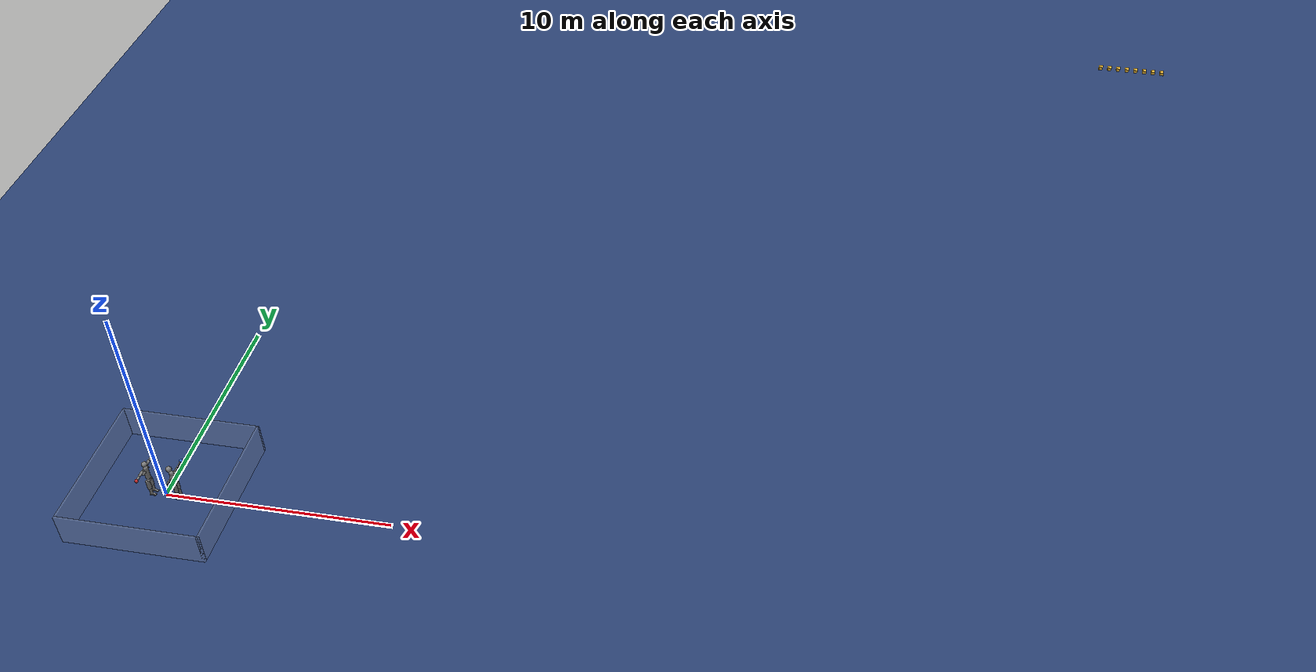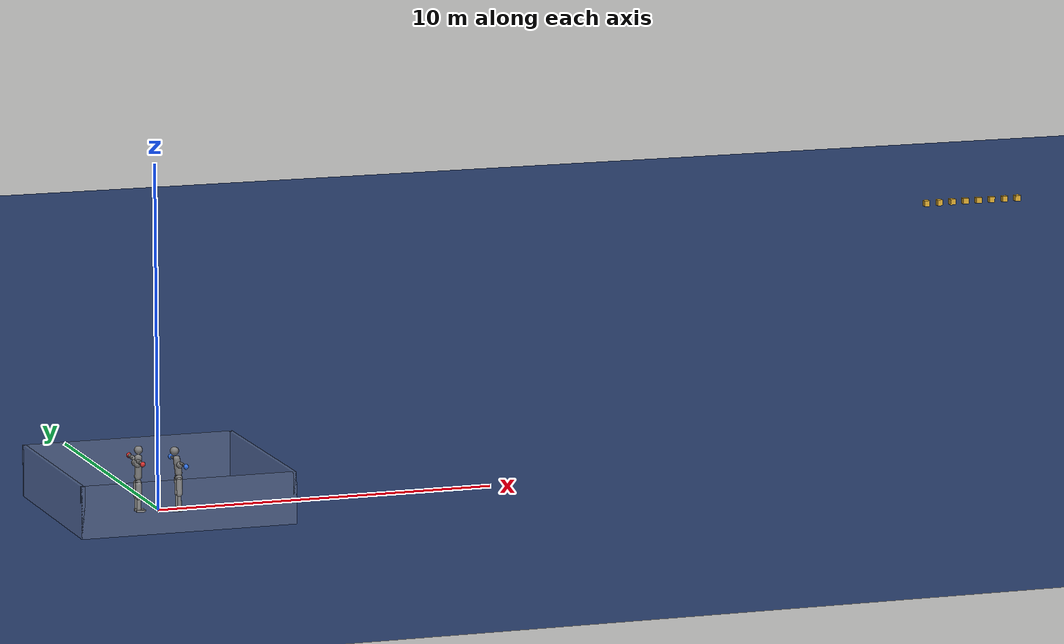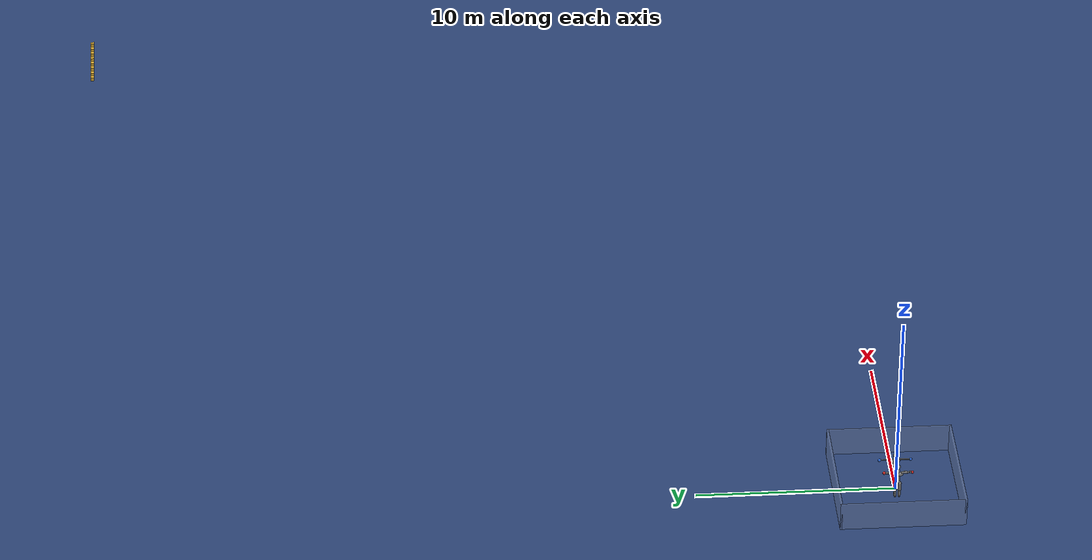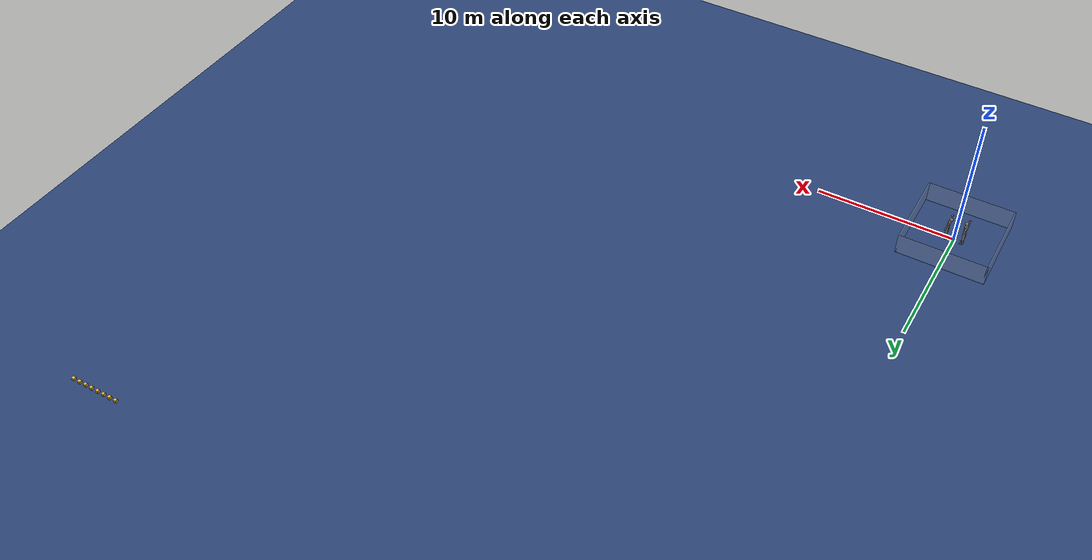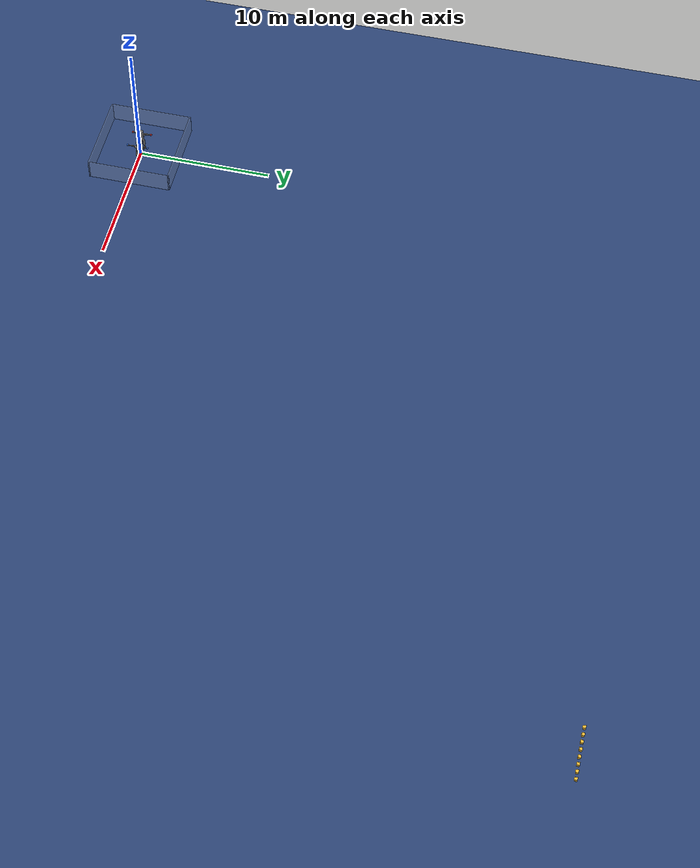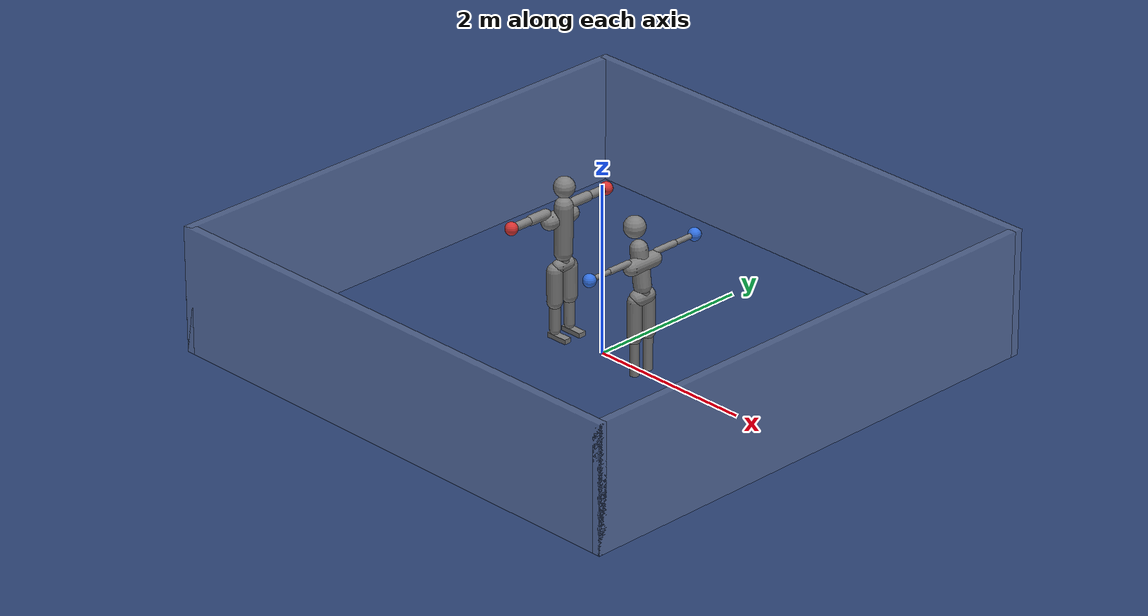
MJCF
<mujoco model="trump_vs_zombie_spar">
  <compiler angle="degree" inertiafromgeom="true" autolimits="true"/>
  <option timestep="0.005" iterations="10" ls_iterations="10" integrator="implicitfast">
    <flag eulerdamp="disable"/>
  </option>
  <default>
    <geom contype="1" conaffinity="1" condim="3" friction="1.0 0.005 0.0001" density="1000" margin="0"/>
    <joint limited="true"/>
    <position ctrllimited="true"/>
  </default>
  <asset>
    <texture name="grid" type="2d" builtin="checker" rgb1=".18 .28 .48" rgb2=".14 .22 .40" width="300" height="300"/>
    <material name="grid" texture="grid" texrepeat="6 6" reflectance="0"/>
  </asset>
  <worldbody>
    <light pos="0 0 5" dir="0 0 -1" directional="true"/>
    <geom name="floor" type="plane" size="0 0 0.05" material="grid" friction="1.0 0.005 0.0001"/>
    <geom name="rope_n" type="box" pos="0.0000 3.1000 0.7500" size="3.1500 0.0500 0.7500" rgba="0.8 0.8 0.8 0.15"/>
    <geom name="rope_s" type="box" pos="0.0000 -3.1000 0.7500" size="3.1500 0.0500 0.7500" rgba="0.8 0.8 0.8 0.15"/>
    <geom name="rope_e" type="box" pos="3.1000 0.0000 0.7500" size="0.0500 3.1500 0.7500" rgba="0.8 0.8 0.8 0.15"/>
    <geom name="rope_w" type="box" pos="-3.1000 0.0000 0.7500" size="0.0500 3.1500 0.7500" rgba="0.8 0.8 0.8 0.15"/>
    <body name="a_pelvis" pos="-0.6000 0.0000 0.8500" quat="1.00000 0 0 0.00000">
      <freejoint name="a_root"/>
      <geom name="a_pelvis_geom" type="capsule" fromto="0.0000 -0.0700 0.0000 0.0000 0.0700 0.0000" size="0.0759" mass="9.1798" />
      <geom name="a_pelvis_up" type="capsule" fromto="0.0000 0.0000 0.0000 0.0000 0.0000 0.1100" size="0.0683" mass="6.1988" />
      <body name="a_torso" pos="0.0000 0.0000 0.1300">
        <joint name="a_abdomen_z" type="hinge" axis="0 0 1" range="-45 45" damping="0.5" armature="0.08" stiffness="0"/>
        <joint name="a_abdomen_y" type="hinge" axis="0 1 0" range="-60 30" damping="0.5" armature="0.08" stiffness="0"/>
        <joint name="a_abdomen_x" type="hinge" axis="1 0 0" range="-35 35" damping="0.5" armature="0.08" stiffness="0"/>
        <geom name="a_torso_geom" type="capsule" fromto="0.0000 0.0000 0.0200 0.0100 0.0000 0.5700" size="0.1054" mass="38.4465" />
        <geom name="a_chest_geom" type="capsule" fromto="-0.0480 -0.1600 0.4160 -0.0480 0.1600 0.4160" size="0.0949" mass="0.5"/>
        <geom name="a_head_geom" type="sphere" pos="0.0200 0.0000 0.8000" size="0.1200" mass="8.7723" />
        <body name="a_upper_arm_l" pos="-0.0600 0.2000 0.5200">
          <joint name="a_shoulder_x_l" type="hinge" axis="1 0 0" range="-170 30" damping="0.5" armature="0.03" stiffness="0"/>
          <joint name="a_shoulder_z_l" type="hinge" axis="0 0 1" range="-110 110" damping="0.5" armature="0.03" stiffness="0"/>
          <geom name="a_upper_arm_l_geom" type="capsule" fromto="0.0000 0.0000 0.0000 0.0000 0.2200 0.0000" size="0.0580" mass="3.0324" />
          <body name="a_forearm_l" pos="0.0000 0.2200 0.0000">
            <joint name="a_elbow_l" type="hinge" axis="0 0 1" range="-150 0" damping="0.5" armature="0.02" stiffness="0"/>
            <geom name="a_forearm_l_geom" type="capsule" fromto="0.0000 0.0000 0.0000 0.0000 0.2202 0.0000" size="0.0480" mass="1.7328" />
            <geom name="a_glove_l" type="sphere" pos="0.0000 0.2877 0.0000" size="0.0750" mass="0.9328" rgba="0.85 0.2 0.2 1"/>
          </body>
        </body>
        <body name="a_upper_arm_r" pos="-0.0600 -0.2000 0.5200">
          <joint name="a_shoulder_x_r" type="hinge" axis="1 0 0" range="-30 170" damping="0.5" armature="0.03" stiffness="0"/>
          <joint name="a_shoulder_z_r" type="hinge" axis="0 0 1" range="-110 110" damping="0.5" armature="0.03" stiffness="0"/>
          <geom name="a_upper_arm_r_geom" type="capsule" fromto="0.0000 0.0000 0.0000 0.0000 -0.2200 0.0000" size="0.0580" mass="3.0324" />
          <body name="a_forearm_r" pos="0.0000 -0.2200 0.0000">
            <joint name="a_elbow_r" type="hinge" axis="0 0 1" range="0 150" damping="0.5" armature="0.02" stiffness="0"/>
            <geom name="a_forearm_r_geom" type="capsule" fromto="0.0000 0.0000 0.0000 0.0000 -0.2202 0.0000" size="0.0480" mass="1.7328" />
            <geom name="a_glove_r" type="sphere" pos="0.0000 -0.2877 0.0000" size="0.0750" mass="0.9328" rgba="0.85 0.2 0.2 1"/>
          </body>
        </body>
      </body>
      <body name="a_thigh_l" pos="-0.0200 0.1100 -0.0500">
        <joint name="a_hip_x_l" type="hinge" axis="1 0 0" range="-40 40" damping="0.5" armature="0.1" stiffness="0"/>
        <joint name="a_hip_z_l" type="hinge" axis="0 0 1" range="-35 35" damping="0.5" armature="0.1" stiffness="0"/>
        <joint name="a_hip_y_l" type="hinge" axis="0 1 0" range="-120 30" damping="0.5" armature="0.1" stiffness="0"/>
        <geom name="a_thigh_l_geom" type="capsule" fromto="0.0000 0.0000 0.0000 0.0000 0.0000 -0.3618" size="0.0900" mass="10.8300" />
        <body name="a_shin_l" pos="0.0000 0.0000 -0.3618">
          <joint name="a_knee_l" type="hinge" axis="0 1 0" range="0 150" damping="0.5" armature="0.1" stiffness="0"/>
          <geom name="a_shin_l_geom" type="capsule" fromto="0.0000 0.0000 0.0000 0.0000 0.0000 -0.3404" size="0.0620" mass="5.0359" />
          <body name="a_foot_l" pos="0.0000 0.0000 -0.3404">
            <joint name="a_ankle_y_l" type="hinge" axis="0 1 0" range="-20 50" damping="0.5" armature="0.03" stiffness="0"/>
            <joint name="a_ankle_x_l" type="hinge" axis="1 0 0" range="-25 25" damping="0.5" armature="0.03" stiffness="0"/>
            <geom name="a_foot_l_geom" type="box" pos="0.0624 0.0000 -0.0720" size="0.1358 0.0450 0.0280" mass="1.5704" friction="1.0 0.005 0.0001"/>
            <site name="a_foot_l_site" pos="0.0624 0.0000 -0.0720" size="0.01"/>
          </body>
        </body>
      </body>
      <body name="a_thigh_r" pos="-0.0200 -0.1100 -0.0500">
        <joint name="a_hip_x_r" type="hinge" axis="1 0 0" range="-40 40" damping="0.5" armature="0.1" stiffness="0"/>
        <joint name="a_hip_z_r" type="hinge" axis="0 0 1" range="-35 35" damping="0.5" armature="0.1" stiffness="0"/>
        <joint name="a_hip_y_r" type="hinge" axis="0 1 0" range="-120 30" damping="0.5" armature="0.1" stiffness="0"/>
        <geom name="a_thigh_r_geom" type="capsule" fromto="0.0000 0.0000 0.0000 0.0000 0.0000 -0.3618" size="0.0900" mass="10.8300" />
        <body name="a_shin_r" pos="0.0000 0.0000 -0.3618">
          <joint name="a_knee_r" type="hinge" axis="0 1 0" range="0 150" damping="0.5" armature="0.1" stiffness="0"/>
          <geom name="a_shin_r_geom" type="capsule" fromto="0.0000 0.0000 0.0000 0.0000 0.0000 -0.3404" size="0.0620" mass="5.0359" />
          <body name="a_foot_r" pos="0.0000 0.0000 -0.3404">
            <joint name="a_ankle_y_r" type="hinge" axis="0 1 0" range="-20 50" damping="0.5" armature="0.03" stiffness="0"/>
            <joint name="a_ankle_x_r" type="hinge" axis="1 0 0" range="-25 25" damping="0.5" armature="0.03" stiffness="0"/>
            <geom name="a_foot_r_geom" type="box" pos="0.0624 0.0000 -0.0720" size="0.1358 0.0450 0.0280" mass="1.5704" friction="1.0 0.005 0.0001"/>
            <site name="a_foot_r_site" pos="0.0624 0.0000 -0.0720" size="0.01"/>
          </body>
        </body>
      </body>
    </body>
    <body name="b_pelvis" pos="0.6000 0.0000 0.8994" quat="0.00000 0 0 1.00000">
      <freejoint name="b_root"/>
      <geom name="b_pelvis_geom" type="capsule" fromto="0.0000 -0.0700 0.0000 0.0000 0.0700 0.0000" size="0.0937" mass="8.0010" />
      <geom name="b_pelvis_up" type="capsule" fromto="0.0000 0.0000 0.0000 -0.0021 0.0000 0.0858" size="0.0843" mass="4.8500" />
      <body name="b_torso" pos="-0.0021 0.0000 0.1058">
        <joint name="b_abdomen_z" type="hinge" axis="0 0 1" range="-45 45" damping="0.5" armature="0.08" stiffness="0"/>
        <joint name="b_abdomen_y" type="hinge" axis="0 1 0" range="-60 30" damping="0.5" armature="0.08" stiffness="0"/>
        <joint name="b_abdomen_x" type="hinge" axis="1 0 0" range="-35 35" damping="0.5" armature="0.08" stiffness="0"/>
        <geom name="b_torso_geom" type="capsule" fromto="0.0000 0.0000 0.0200 0.0555 0.0000 0.4396" size="0.1001" mass="32.1275" />
        <geom name="b_chest_geom" type="capsule" fromto="0.0001 -0.1682 0.2861 0.0001 0.1682 0.2861" size="0.0901" mass="0.5"/>
        <geom name="b_head_geom" type="sphere" pos="0.1184 0.0000 0.6737" size="0.1250" mass="7.3305" />
        <body name="b_upper_arm_l" pos="0.0001 0.2102 0.3576">
          <joint name="b_shoulder_x_l" type="hinge" axis="1 0 0" range="-170 30" damping="0.5" armature="0.03" stiffness="0"/>
          <joint name="b_shoulder_z_l" type="hinge" axis="0 0 1" range="-110 110" damping="0.5" armature="0.03" stiffness="0"/>
          <geom name="b_upper_arm_l_geom" type="capsule" fromto="0.0000 0.0000 0.0000 0.0000 0.2647 0.0000" size="0.0367" mass="2.5340" />
          <body name="b_forearm_l" pos="0.0000 0.2647 0.0000">
            <joint name="b_elbow_l" type="hinge" axis="0 0 1" range="-150 0" damping="0.5" armature="0.02" stiffness="0"/>
            <geom name="b_forearm_l_geom" type="capsule" fromto="0.0000 0.0000 0.0000 0.0000 0.2417 0.0000" size="0.0299" mass="1.4480" />
            <geom name="b_glove_l" type="sphere" pos="0.0000 0.3092 0.0000" size="0.0750" mass="0.8260" rgba="0.2 0.45 0.9 1"/>
          </body>
        </body>
        <body name="b_upper_arm_r" pos="0.0001 -0.2102 0.3576">
          <joint name="b_shoulder_x_r" type="hinge" axis="1 0 0" range="-30 170" damping="0.5" armature="0.03" stiffness="0"/>
          <joint name="b_shoulder_z_r" type="hinge" axis="0 0 1" range="-110 110" damping="0.5" armature="0.03" stiffness="0"/>
          <geom name="b_upper_arm_r_geom" type="capsule" fromto="0.0000 0.0000 0.0000 0.0000 -0.2647 0.0000" size="0.0367" mass="2.5340" />
          <body name="b_forearm_r" pos="0.0000 -0.2647 0.0000">
            <joint name="b_elbow_r" type="hinge" axis="0 0 1" range="0 150" damping="0.5" armature="0.02" stiffness="0"/>
            <geom name="b_forearm_r_geom" type="capsule" fromto="0.0000 0.0000 0.0000 0.0000 -0.2417 0.0000" size="0.0299" mass="1.4480" />
            <geom name="b_glove_r" type="sphere" pos="0.0000 -0.3092 0.0000" size="0.0750" mass="0.8260" rgba="0.2 0.45 0.9 1"/>
          </body>
        </body>
      </body>
      <body name="b_thigh_l" pos="0.0106 0.1020 -0.0264">
        <joint name="b_hip_x_l" type="hinge" axis="1 0 0" range="-40 40" damping="0.5" armature="0.1" stiffness="0"/>
        <joint name="b_hip_z_l" type="hinge" axis="0 0 1" range="-35 35" damping="0.5" armature="0.1" stiffness="0"/>
        <joint name="b_hip_y_l" type="hinge" axis="0 1 0" range="-120 30" damping="0.5" armature="0.1" stiffness="0"/>
        <geom name="b_thigh_l_geom" type="capsule" fromto="0.0000 0.0000 0.0000 0.0000 0.0000 -0.4306" size="0.0812" mass="9.0500" />
        <body name="b_shin_l" pos="0.0000 0.0000 -0.4306">
          <joint name="b_knee_l" type="hinge" axis="0 1 0" range="0 150" damping="0.5" armature="0.1" stiffness="0"/>
          <geom name="b_shin_l_geom" type="capsule" fromto="0.0000 0.0000 0.0000 0.0000 0.0000 -0.4552" size="0.0535" mass="4.2082" />
          <body name="b_foot_l" pos="0.0000 0.0000 -0.4552">
            <joint name="b_ankle_y_l" type="hinge" axis="0 1 0" range="-20 50" damping="0.5" armature="0.03" stiffness="0"/>
            <joint name="b_ankle_x_l" type="hinge" axis="1 0 0" range="-25 25" damping="0.5" armature="0.03" stiffness="0"/>
            <geom name="b_foot_l_geom" type="box" pos="0.0570 0.0000 -0.0493" size="0.1239 0.0450 0.0280" mass="1.3123" friction="1.0 0.005 0.0001"/>
            <site name="b_foot_l_site" pos="0.0570 0.0000 -0.0493" size="0.01"/>
          </body>
        </body>
      </body>
      <body name="b_thigh_r" pos="0.0106 -0.1020 -0.0264">
        <joint name="b_hip_x_r" type="hinge" axis="1 0 0" range="-40 40" damping="0.5" armature="0.1" stiffness="0"/>
        <joint name="b_hip_z_r" type="hinge" axis="0 0 1" range="-35 35" damping="0.5" armature="0.1" stiffness="0"/>
        <joint name="b_hip_y_r" type="hinge" axis="0 1 0" range="-120 30" damping="0.5" armature="0.1" stiffness="0"/>
        <geom name="b_thigh_r_geom" type="capsule" fromto="0.0000 0.0000 0.0000 0.0000 0.0000 -0.4306" size="0.0812" mass="9.0500" />
        <body name="b_shin_r" pos="0.0000 0.0000 -0.4306">
          <joint name="b_knee_r" type="hinge" axis="0 1 0" range="0 150" damping="0.5" armature="0.1" stiffness="0"/>
          <geom name="b_shin_r_geom" type="capsule" fromto="0.0000 0.0000 0.0000 0.0000 0.0000 -0.4552" size="0.0535" mass="4.2082" />
          <body name="b_foot_r" pos="0.0000 0.0000 -0.4552">
            <joint name="b_ankle_y_r" type="hinge" axis="0 1 0" range="-20 50" damping="0.5" armature="0.03" stiffness="0"/>
            <joint name="b_ankle_x_r" type="hinge" axis="1 0 0" range="-25 25" damping="0.5" armature="0.03" stiffness="0"/>
            <geom name="b_foot_r_geom" type="box" pos="0.0570 0.0000 -0.0493" size="0.1239 0.0450 0.0280" mass="1.3123" friction="1.0 0.005 0.0001"/>
            <site name="b_foot_r_site" pos="0.0570 0.0000 -0.0493" size="0.01"/>
          </body>
        </body>
      </body>
    </body>
    <body name="cube_0" pos="40.0000 40.0000 0.3000"><freejoint name="cube_0"/><geom name="cube_0_geom" type="box" size="0.1 0.1 0.1" mass="1.0" rgba="0.9 0.7 0.2 1"/></body>
    <body name="cube_1" pos="40.5000 40.0000 0.3000"><freejoint name="cube_1"/><geom name="cube_1_geom" type="box" size="0.1 0.1 0.1" mass="1.0" rgba="0.9 0.7 0.2 1"/></body>
    <body name="cube_2" pos="41.0000 40.0000 0.3000"><freejoint name="cube_2"/><geom name="cube_2_geom" type="box" size="0.1 0.1 0.1" mass="1.0" rgba="0.9 0.7 0.2 1"/></body>
    <body name="cube_3" pos="41.5000 40.0000 0.3000"><freejoint name="cube_3"/><geom name="cube_3_geom" type="box" size="0.1 0.1 0.1" mass="1.0" rgba="0.9 0.7 0.2 1"/></body>
    <body name="cube_4" pos="42.0000 40.0000 0.3000"><freejoint name="cube_4"/><geom name="cube_4_geom" type="box" size="0.1 0.1 0.1" mass="1.0" rgba="0.9 0.7 0.2 1"/></body>
    <body name="cube_5" pos="42.5000 40.0000 0.3000"><freejoint name="cube_5"/><geom name="cube_5_geom" type="box" size="0.1 0.1 0.1" mass="1.0" rgba="0.9 0.7 0.2 1"/></body>
    <body name="cube_6" pos="43.0000 40.0000 0.3000"><freejoint name="cube_6"/><geom name="cube_6_geom" type="box" size="0.1 0.1 0.1" mass="1.0" rgba="0.9 0.7 0.2 1"/></body>
    <body name="cube_7" pos="43.5000 40.0000 0.3000"><freejoint name="cube_7"/><geom name="cube_7_geom" type="box" size="0.1 0.1 0.1" mass="1.0" rgba="0.9 0.7 0.2 1"/></body>
  </worldbody>
  <contact>
    <exclude body1="a_pelvis" body2="a_torso"/>
    <exclude body1="a_pelvis" body2="a_thigh_l"/>
    <exclude body1="a_thigh_l" body2="a_shin_l"/>
    <exclude body1="a_shin_l" body2="a_foot_l"/>
    <exclude body1="a_torso" body2="a_upper_arm_l"/>
    <exclude body1="a_upper_arm_l" body2="a_forearm_l"/>
    <exclude body1="a_pelvis" body2="a_thigh_r"/>
    <exclude body1="a_thigh_r" body2="a_shin_r"/>
    <exclude body1="a_shin_r" body2="a_foot_r"/>
    <exclude body1="a_torso" body2="a_upper_arm_r"/>
    <exclude body1="a_upper_arm_r" body2="a_forearm_r"/>
    <exclude body1="b_pelvis" body2="b_torso"/>
    <exclude body1="b_pelvis" body2="b_thigh_l"/>
    <exclude body1="b_thigh_l" body2="b_shin_l"/>
    <exclude body1="b_shin_l" body2="b_foot_l"/>
    <exclude body1="b_torso" body2="b_upper_arm_l"/>
    <exclude body1="b_upper_arm_l" body2="b_forearm_l"/>
    <exclude body1="b_pelvis" body2="b_thigh_r"/>
    <exclude body1="b_thigh_r" body2="b_shin_r"/>
    <exclude body1="b_shin_r" body2="b_foot_r"/>
    <exclude body1="b_torso" body2="b_upper_arm_r"/>
    <exclude body1="b_upper_arm_r" body2="b_forearm_r"/>
  </contact>
  <actuator>
    <position name="a_abdomen_z" joint="a_abdomen_z" kp="495.9" kv="23.142" forcerange="-187.34 187.34" ctrlrange="-0.7854 0.7854"/>
    <position name="a_abdomen_y" joint="a_abdomen_y" kp="495.9" kv="23.142" forcerange="-187.34 187.34" ctrlrange="-1.0472 0.5236"/>
    <position name="a_abdomen_x" joint="a_abdomen_x" kp="495.9" kv="23.142" forcerange="-187.34 187.34" ctrlrange="-0.6109 0.6109"/>
    <position name="a_shoulder_x_l" joint="a_shoulder_x_l" kp="176.32" kv="8.816" forcerange="-110.2 110.2" ctrlrange="-2.9671 0.5236"/>
    <position name="a_shoulder_z_l" joint="a_shoulder_z_l" kp="176.32" kv="8.816" forcerange="-110.2 110.2" ctrlrange="-1.9199 1.9199"/>
    <position name="a_elbow_l" joint="a_elbow_l" kp="121.22" kv="6.061" forcerange="-77.14 77.14" ctrlrange="-2.6180 0.0000"/>
    <position name="a_shoulder_x_r" joint="a_shoulder_x_r" kp="176.32" kv="8.816" forcerange="-110.2 110.2" ctrlrange="-0.5236 2.9671"/>
    <position name="a_shoulder_z_r" joint="a_shoulder_z_r" kp="176.32" kv="8.816" forcerange="-110.2 110.2" ctrlrange="-1.9199 1.9199"/>
    <position name="a_elbow_r" joint="a_elbow_r" kp="121.22" kv="6.061" forcerange="-77.14 77.14" ctrlrange="0.0000 2.6180"/>
    <position name="a_hip_x_l" joint="a_hip_x_l" kp="661.2" kv="33.06" forcerange="-264.48 264.48" ctrlrange="-0.6981 0.6981"/>
    <position name="a_hip_z_l" joint="a_hip_z_l" kp="661.2" kv="33.06" forcerange="-264.48 264.48" ctrlrange="-0.6109 0.6109"/>
    <position name="a_hip_y_l" joint="a_hip_y_l" kp="661.2" kv="33.06" forcerange="-264.48 264.48" ctrlrange="-2.0944 0.5236"/>
    <position name="a_knee_l" joint="a_knee_l" kp="661.2" kv="33.06" forcerange="-286.52 286.52" ctrlrange="0.0000 2.6180"/>
    <position name="a_ankle_y_l" joint="a_ankle_y_l" kp="826.5" kv="33.06" forcerange="-242.44 242.44" ctrlrange="-0.3491 0.8727"/>
    <position name="a_ankle_x_l" joint="a_ankle_x_l" kp="88.16" kv="4.408" forcerange="-66.12 66.12" ctrlrange="-0.4363 0.4363"/>
    <position name="a_hip_x_r" joint="a_hip_x_r" kp="661.2" kv="33.06" forcerange="-264.48 264.48" ctrlrange="-0.6981 0.6981"/>
    <position name="a_hip_z_r" joint="a_hip_z_r" kp="661.2" kv="33.06" forcerange="-264.48 264.48" ctrlrange="-0.6109 0.6109"/>
    <position name="a_hip_y_r" joint="a_hip_y_r" kp="661.2" kv="33.06" forcerange="-264.48 264.48" ctrlrange="-2.0944 0.5236"/>
    <position name="a_knee_r" joint="a_knee_r" kp="661.2" kv="33.06" forcerange="-286.52 286.52" ctrlrange="0.0000 2.6180"/>
    <position name="a_ankle_y_r" joint="a_ankle_y_r" kp="826.5" kv="33.06" forcerange="-242.44 242.44" ctrlrange="-0.3491 0.8727"/>
    <position name="a_ankle_x_r" joint="a_ankle_x_r" kp="88.16" kv="4.408" forcerange="-66.12 66.12" ctrlrange="-0.4363 0.4363"/>
    <position name="b_abdomen_z" joint="b_abdomen_z" kp="453.15" kv="21.147" forcerange="-171.19 171.19" ctrlrange="-0.7854 0.7854"/>
    <position name="b_abdomen_y" joint="b_abdomen_y" kp="453.15" kv="21.147" forcerange="-171.19 171.19" ctrlrange="-1.0472 0.5236"/>
    <position name="b_abdomen_x" joint="b_abdomen_x" kp="453.15" kv="21.147" forcerange="-171.19 171.19" ctrlrange="-0.6109 0.6109"/>
    <position name="b_shoulder_x_l" joint="b_shoulder_x_l" kp="161.12" kv="8.056" forcerange="-100.7 100.7" ctrlrange="-2.9671 0.5236"/>
    <position name="b_shoulder_z_l" joint="b_shoulder_z_l" kp="161.12" kv="8.056" forcerange="-100.7 100.7" ctrlrange="-1.9199 1.9199"/>
    <position name="b_elbow_l" joint="b_elbow_l" kp="110.77" kv="5.538" forcerange="-70.49 70.49" ctrlrange="-2.6180 0.0000"/>
    <position name="b_shoulder_x_r" joint="b_shoulder_x_r" kp="161.12" kv="8.056" forcerange="-100.7 100.7" ctrlrange="-0.5236 2.9671"/>
    <position name="b_shoulder_z_r" joint="b_shoulder_z_r" kp="161.12" kv="8.056" forcerange="-100.7 100.7" ctrlrange="-1.9199 1.9199"/>
    <position name="b_elbow_r" joint="b_elbow_r" kp="110.77" kv="5.538" forcerange="-70.49 70.49" ctrlrange="0.0000 2.6180"/>
    <position name="b_hip_x_l" joint="b_hip_x_l" kp="604.2" kv="30.21" forcerange="-241.68 241.68" ctrlrange="-0.6981 0.6981"/>
    <position name="b_hip_z_l" joint="b_hip_z_l" kp="604.2" kv="30.21" forcerange="-241.68 241.68" ctrlrange="-0.6109 0.6109"/>
    <position name="b_hip_y_l" joint="b_hip_y_l" kp="604.2" kv="30.21" forcerange="-241.68 241.68" ctrlrange="-2.0944 0.5236"/>
    <position name="b_knee_l" joint="b_knee_l" kp="604.2" kv="30.21" forcerange="-261.82 261.82" ctrlrange="0.0000 2.6180"/>
    <position name="b_ankle_y_l" joint="b_ankle_y_l" kp="755.25" kv="30.21" forcerange="-221.54 221.54" ctrlrange="-0.3491 0.8727"/>
    <position name="b_ankle_x_l" joint="b_ankle_x_l" kp="80.56" kv="4.028" forcerange="-60.42 60.42" ctrlrange="-0.4363 0.4363"/>
    <position name="b_hip_x_r" joint="b_hip_x_r" kp="604.2" kv="30.21" forcerange="-241.68 241.68" ctrlrange="-0.6981 0.6981"/>
    <position name="b_hip_z_r" joint="b_hip_z_r" kp="604.2" kv="30.21" forcerange="-241.68 241.68" ctrlrange="-0.6109 0.6109"/>
    <position name="b_hip_y_r" joint="b_hip_y_r" kp="604.2" kv="30.21" forcerange="-241.68 241.68" ctrlrange="-2.0944 0.5236"/>
    <position name="b_knee_r" joint="b_knee_r" kp="604.2" kv="30.21" forcerange="-261.82 261.82" ctrlrange="0.0000 2.6180"/>
    <position name="b_ankle_y_r" joint="b_ankle_y_r" kp="755.25" kv="30.21" forcerange="-221.54 221.54" ctrlrange="-0.3491 0.8727"/>
    <position name="b_ankle_x_r" joint="b_ankle_x_r" kp="80.56" kv="4.028" forcerange="-60.42 60.42" ctrlrange="-0.4363 0.4363"/>
  </actuator>
  <keyframe>
    <key name="stand" qpos="-0.6000 0.0000 0.8360 1.00000 0 0 0.00000 0.0000 0.0000 0.0000 -1.3265 -0.7330 -1.9548 1.3265 0.7330 1.9548 0.0000 0.0000 -0.1932 0.4538 -0.2606 0.0000 0.0000 0.0000 -0.1932 0.4538 -0.2606 0.0000 0.6000 0.0000 0.9688 0.00000 0 0 1.00000 0.0000 0.0000 0.0000 -1.3265 -0.7330 -1.9548 1.3265 0.7330 1.9548 0.0000 0.0000 -0.2267 0.4538 -0.2271 0.0000 0.0000 0.0000 -0.2267 0.4538 -0.2271 0.0000 40.0000 40.0000 0.3000 1 0 0 0 40.5000 40.0000 0.3000 1 0 0 0 41.0000 40.0000 0.3000 1 0 0 0 41.5000 40.0000 0.3000 1 0 0 0 42.0000 40.0000 0.3000 1 0 0 0 42.5000 40.0000 0.3000 1 0 0 0 43.0000 40.0000 0.3000 1 0 0 0 43.5000 40.0000 0.3000 1 0 0 0"/>
  </keyframe>
</mujoco>
